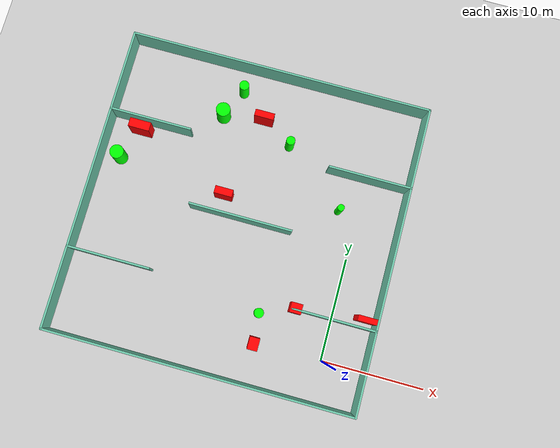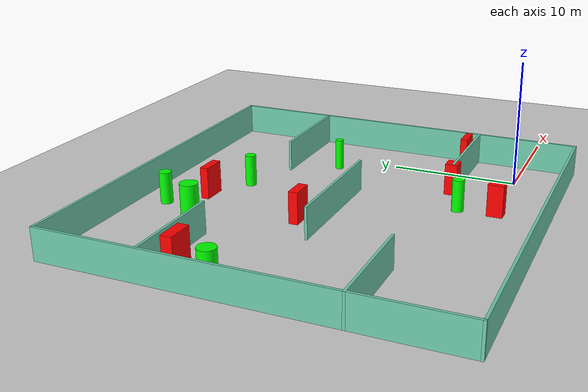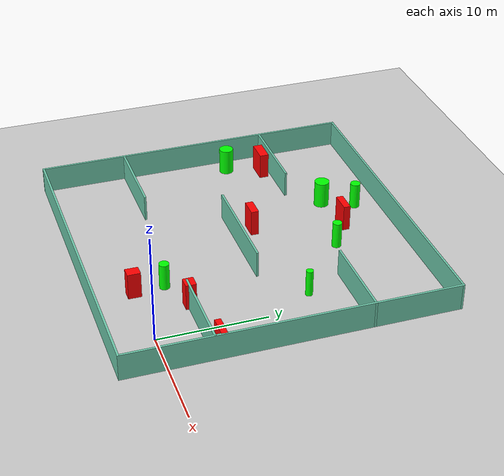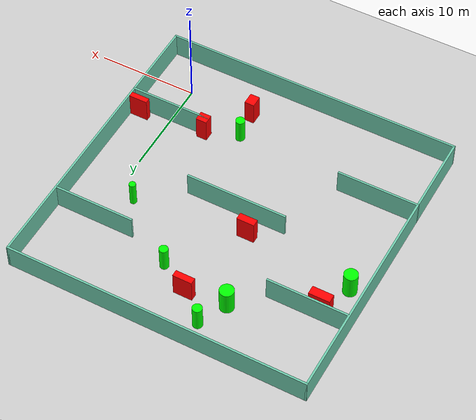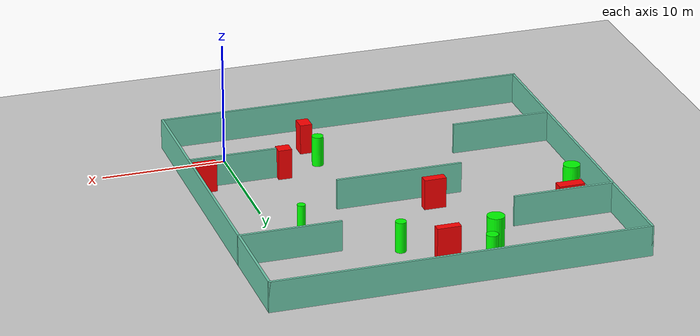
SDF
<sdf version="1.7">
 <world name="default">
  <light name="sun" type="directional">
   <pose>0 0 10 0 -0 0</pose>
   <diffuse>0.8 0.8 0.8 1</diffuse>
   <specular>0.2 0.2 0.2 1</specular>
   <attenuation>
    <range>1000</range>
    <constant>0.9</constant>
    <linear>0.01</linear>
    <quadratic>0.001</quadratic>
   </attenuation>
   <direction>-0.5 0.1 -0.9</direction>
   <spot><inner_angle>0</inner_angle><outer_angle>0</outer_angle><falloff>0</falloff></spot>
  </light>
  <model name="ground_plane">
   <static>1</static>
   <link name="link">
    <collision name="collision">
     <geometry><plane><normal>0 0 1</normal><size>100 100</size></plane></geometry>
     <surface>
      <contact><collide_bitmask>65535</collide_bitmask></contact>
      <friction><ode><mu>100</mu><mu2>50</mu2></ode></friction>
     </surface>
    </collision>
    <visual name="visual">
     <cast_shadows>0</cast_shadows>
     <geometry><plane><normal>0 0 1</normal><size>100 100</size></plane></geometry>
     <material>
      <script><uri>file://media/materials/scripts/gazebo.material</uri><name>Gazebo/Grey</name></script>
     </material>
    </visual>
   </link>
  </model>
  <gravity>0 0 -9.8</gravity>
  <magnetic_field>6e-06 2.3e-05 -4.2e-05</magnetic_field>
  <atmosphere type="adiabatic"/>
  <physics type="ode">
   <max_step_size>0.001</max_step_size>
   <real_time_factor>1</real_time_factor>
   <real_time_update_rate>1000</real_time_update_rate>
  </physics>
  <scene><ambient>0.4 0.4 0.4 1</ambient><background>0.7 0.7 0.7 1</background><shadows>1</shadows></scene>
  <spherical_coordinates>
   <surface_model>EARTH_WGS84</surface_model>
   <latitude_deg>0</latitude_deg>
   <longitude_deg>0</longitude_deg>
   <elevation>0</elevation>
   <heading_deg>0</heading_deg>
  </spherical_coordinates>
  <model name="my_base_walls">
   <link name="Wall_10">
    <collision name="Wall_10_Collision">
     <geometry><box><size>8.2 0.2 2.5</size></box></geometry>
     <pose>0 0 1.25 0 -0 0</pose>
    </collision>
    <visual name="Wall_10_Visual">
     <pose>0 0 1.25 0 -0 0</pose>
     <geometry><box><size>8.2 0.2 2.5</size></box></geometry>
     <material>
      <script><uri>file://media/materials/scripts/gazebo.material</uri><name>Gazebo/Grey</name></script>
      <ambient>0.435294 0.796078 0.67451 1</ambient>
     </material>
     <meta><layer>0</layer></meta>
    </visual>
    <pose>-11 -7 0 0 -0 0</pose>
   </link>
   <link name="Wall_12">
    <collision name="Wall_12_Collision">
     <geometry><box><size>8.2 0.2 2.5</size></box></geometry>
     <pose>0 0 1.25 0 -0 0</pose>
    </collision>
    <visual name="Wall_12_Visual">
     <pose>0 0 1.25 0 -0 0</pose>
     <geometry><box><size>8.2 0.2 2.5</size></box></geometry>
     <material>
      <script><uri>file://media/materials/scripts/gazebo.material</uri><name>Gazebo/Grey</name></script>
      <ambient>0.435294 0.796078 0.67451 1</ambient>
     </material>
     <meta><layer>0</layer></meta>
    </visual>
    <pose>-11 7 0 0 -0 0</pose>
   </link>
   <link name="Wall_14">
    <collision name="Wall_14_Collision">
     <geometry><box><size>8.2 0.2 2.5</size></box></geometry>
     <pose>0 0 1.25 0 -0 0</pose>
    </collision>
    <visual name="Wall_14_Visual">
     <pose>0 0 1.25 0 -0 0</pose>
     <geometry><box><size>8.2 0.2 2.5</size></box></geometry>
     <material>
      <script><uri>file://media/materials/scripts/gazebo.material</uri><name>Gazebo/Grey</name></script>
      <ambient>0.435294 0.796078 0.67451 1</ambient>
     </material>
     <meta><layer>0</layer></meta>
    </visual>
    <pose>11 7 0 0 -0 3.14159</pose>
   </link>
   <link name="Wall_16">
    <collision name="Wall_16_Collision">
     <geometry><box><size>10.2 0.2 2.5</size></box></geometry>
     <pose>0 0 1.25 0 -0 0</pose>
    </collision>
    <visual name="Wall_16_Visual">
     <pose>0 0 1.25 0 -0 0</pose>
     <geometry><box><size>10.2 0.2 2.5</size></box></geometry>
     <material>
      <script><uri>file://media/materials/scripts/gazebo.material</uri><name>Gazebo/Grey</name></script>
      <ambient>0.435294 0.796078 0.67451 1</ambient>
     </material>
     <meta><layer>0</layer></meta>
    </visual>
    <pose>0 0 0 0 -0 3.14159</pose>
   </link>
   <link name="Wall_2">
    <collision name="Wall_2_Collision">
     <geometry><box><size>30.2 0.2 2.5</size></box></geometry>
     <pose>0 0 1.25 0 -0 0</pose>
    </collision>
    <visual name="Wall_2_Visual">
     <pose>0 0 1.25 0 -0 0</pose>
     <geometry><box><size>30.2 0.2 2.5</size></box></geometry>
     <material>
      <script><uri>file://media/materials/scripts/gazebo.material</uri><name>Gazebo/Grey</name></script>
      <ambient>0.435294 0.796078 0.67451 1</ambient>
     </material>
     <meta><layer>0</layer></meta>
    </visual>
    <pose>0 -15 0 0 -0 3.14159</pose>
   </link>
   <link name="Wall_3">
    <collision name="Wall_3_Collision">
     <geometry><box><size>30.2 0.2 2.5</size></box></geometry>
     <pose>0 0 1.25 0 -0 0</pose>
    </collision>
    <visual name="Wall_3_Visual">
     <pose>0 0 1.25 0 -0 0</pose>
     <geometry><box><size>30.2 0.2 2.5</size></box></geometry>
     <material>
      <script><uri>file://media/materials/scripts/gazebo.material</uri><name>Gazebo/Grey</name></script>
      <ambient>0.435294 0.796078 0.67451 1</ambient>
     </material>
     <meta><layer>0</layer></meta>
    </visual>
    <pose>-15 0 0 0 -0 1.5708</pose>
   </link>
   <link name="Wall_4">
    <collision name="Wall_4_Collision">
     <geometry><box><size>30.2 0.2 2.5</size></box></geometry>
     <pose>0 0 1.25 0 -0 0</pose>
    </collision>
    <visual name="Wall_4_Visual">
     <pose>0 0 1.25 0 -0 0</pose>
     <geometry><box><size>30.2 0.2 2.5</size></box></geometry>
     <material>
      <script><uri>file://media/materials/scripts/gazebo.material</uri><name>Gazebo/Grey</name></script>
      <ambient>0.435294 0.796078 0.67451 1</ambient>
     </material>
     <meta><layer>0</layer></meta>
    </visual>
    <pose>0 15 0 0 -0 0</pose>
   </link>
   <link name="Wall_6">
    <collision name="Wall_6_Collision">
     <geometry><box><size>30.2 0.2 2.5</size></box></geometry>
     <pose>0 0 1.25 0 -0 0</pose>
    </collision>
    <visual name="Wall_6_Visual">
     <pose>0 0 1.25 0 -0 0</pose>
     <geometry><box><size>30.2 0.2 2.5</size></box></geometry>
     <material>
      <script><uri>file://media/materials/scripts/gazebo.material</uri><name>Gazebo/Grey</name></script>
      <ambient>0.435294 0.796078 0.67451 1</ambient>
     </material>
     <meta><layer>0</layer></meta>
    </visual>
    <pose>15 0 0 0 -0 1.5708</pose>
   </link>
   <link name="Wall_8">
    <collision name="Wall_8_Collision">
     <geometry><box><size>8.2 0.2 2.5</size></box></geometry>
     <pose>0 0 1.25 0 -0 0</pose>
    </collision>
    <visual name="Wall_8_Visual">
     <pose>0 0 1.25 0 -0 0</pose>
     <geometry><box><size>8.2 0.2 2.5</size></box></geometry>
     <material>
      <script><uri>file://media/materials/scripts/gazebo.material</uri><name>Gazebo/Grey</name></script>
      <ambient>0.435294 0.796078 0.67451 1</ambient>
     </material>
     <meta><layer>0</layer></meta>
    </visual>
    <pose>11 -7 0 0 -0 3.14159</pose>
   </link>
   <static>1</static>
   <pose>-11 11 0 0 -0 0</pose>
  </model>
  <model name="cylinder1">
   <static>1</static>
   <link name="link">
    <inertial>
     <mass>1</mass>
     <inertia><ixx>0.5</ixx><ixy>0</ixy><ixz>0</ixz><iyy>0.5</iyy><iyz>0</iyz><izz>1</izz></inertia>
    </inertial>
    <collision name="collision">
     <geometry><cylinder><radius>0.3292311505340181</radius><length>2.5</length></cylinder></geometry>
    </collision>
    <visual name="visual">
     <geometry><cylinder><radius>0.3292311505340181</radius><length>2.5</length></cylinder></geometry>
     <material>
      <ambient>0 1 0 1</ambient>
      <diffuse>0 1 0 1</diffuse>
      <specular>0.1 0.1 0.1 1</specular>
      <emissive>0 0 0 0</emissive>
     </material>
    </visual>
   </link>
   <pose>-1.993307569687559 14.392958351216983 1.25 0 0 0</pose>
  </model>
  <model name="cylinder2">
   <static>1</static>
   <link name="link">
    <inertial>
     <mass>1</mass>
     <inertia><ixx>0.5</ixx><ixy>0</ixy><ixz>0</ixz><iyy>0.5</iyy><iyz>0</iyz><izz>1</izz></inertia>
    </inertial>
    <collision name="collision">
     <geometry><cylinder><radius>0.46333164149371925</radius><length>2.5</length></cylinder></geometry>
    </collision>
    <visual name="visual">
     <geometry><cylinder><radius>0.46333164149371925</radius><length>2.5</length></cylinder></geometry>
     <material>
      <ambient>0 1 0 1</ambient>
      <diffuse>0 1 0 1</diffuse>
      <specular>0.1 0.1 0.1 1</specular>
      <emissive>0 0 0 0</emissive>
     </material>
    </visual>
   </link>
   <pose>-6.9243731614772805 2.7662763300560504 1.25 0 0 0</pose>
  </model>
  <model name="cylinder3">
   <static>1</static>
   <link name="link">
    <inertial>
     <mass>1</mass>
     <inertia><ixx>0.5</ixx><ixy>0</ixy><ixz>0</ixz><iyy>0.5</iyy><iyz>0</iyz><izz>1</izz></inertia>
    </inertial>
    <collision name="collision">
     <geometry><cylinder><radius>0.4770910491233276</radius><length>2.5</length></cylinder></geometry>
    </collision>
    <visual name="visual">
     <geometry><cylinder><radius>0.4770910491233276</radius><length>2.5</length></cylinder></geometry>
     <material>
      <ambient>0 1 0 1</ambient>
      <diffuse>0 1 0 1</diffuse>
      <specular>0.1 0.1 0.1 1</specular>
      <emissive>0 0 0 0</emissive>
     </material>
    </visual>
   </link>
   <pose>-14.09131542675709 23.64202797422084 1.25 0 0 0</pose>
  </model>
  <model name="cylinder4">
   <static>1</static>
   <link name="link">
    <inertial>
     <mass>1</mass>
     <inertia><ixx>0.5</ixx><ixy>0</ixy><ixz>0</ixz><iyy>0.5</iyy><iyz>0</iyz><izz>1</izz></inertia>
    </inertial>
    <collision name="collision">
     <geometry><cylinder><radius>0.6999582400360381</radius><length>2.5</length></cylinder></geometry>
    </collision>
    <visual name="visual">
     <geometry><cylinder><radius>0.6999582400360381</radius><length>2.5</length></cylinder></geometry>
     <material>
      <ambient>0 1 0 1</ambient>
      <diffuse>0 1 0 1</diffuse>
      <specular>0.1 0.1 0.1 1</specular>
      <emissive>0 0 0 0</emissive>
     </material>
    </visual>
   </link>
   <pose>-15.418695098991611 20.74840216281782 1.25 0 0 0</pose>
  </model>
  <model name="cylinder5">
   <static>1</static>
   <link name="link">
    <inertial>
     <mass>1</mass>
     <inertia><ixx>0.5</ixx><ixy>0</ixy><ixz>0</ixz><iyy>0.5</iyy><iyz>0</iyz><izz>1</izz></inertia>
    </inertial>
    <collision name="collision">
     <geometry><cylinder><radius>0.4351675181078787</radius><length>2.5</length></cylinder></geometry>
    </collision>
    <visual name="visual">
     <geometry><cylinder><radius>0.4351675181078787</radius><length>2.5</length></cylinder></geometry>
     <material>
      <ambient>0 1 0 1</ambient>
      <diffuse>0 1 0 1</diffuse>
      <specular>0.1 0.1 0.1 1</specular>
      <emissive>0 0 0 0</emissive>
     </material>
    </visual>
   </link>
   <pose>-8.278060793113386 19.469511188677725 1.25 0 0 0</pose>
  </model>
  <model name="cylinder6">
   <static>1</static>
   <link name="link">
    <inertial>
     <mass>1</mass>
     <inertia><ixx>0.5</ixx><ixy>0</ixy><ixz>0</ixz><iyy>0.5</iyy><iyz>0</iyz><izz>1</izz></inertia>
    </inertial>
    <collision name="collision">
     <geometry><cylinder><radius>0.6776499467640931</radius><length>2.5</length></cylinder></geometry>
    </collision>
    <visual name="visual">
     <geometry><cylinder><radius>0.6776499467640931</radius><length>2.5</length></cylinder></geometry>
     <material>
      <ambient>0 1 0 1</ambient>
      <diffuse>0 1 0 1</diffuse>
      <specular>0.1 0.1 0.1 1</specular>
      <emissive>0 0 0 0</emissive>
     </material>
    </visual>
   </link>
   <pose>-24.181551943946822 13.966508656723171 1.25 0 0 0</pose>
  </model>
  <model name="box1">
   <static>1</static>
   <link name="link">
    <inertial>
     <mass>1</mass>
     <inertia><ixx>0.083</ixx><ixy>0</ixy><ixz>0</ixz><iyy>0.083</iyy><iyz>0</iyz><izz>0.083</izz></inertia>
    </inertial>
    <collision name="collision">
     <geometry><box><size>2.091937823283356 0.8658308874327988 2.5</size></box></geometry>
    </collision>
    <visual name="visual">
     <geometry><box><size>2.091937823283356 0.8658308874327988 2.5</size></box></geometry>
     <material>
      <ambient>1 0 0 1</ambient>
      <diffuse>1 0 0 1</diffuse>
      <specular>0.1 0.1 0.1 1</specular>
      <emissive>0 0 0 0</emissive>
     </material>
    </visual>
    <sensor name="my_contact" type="contact">
     <contact><collision>box_collision</collision><topic>__default_topic__</topic></contact>
    </sensor>
   </link>
   <pose>-22.84117354781321 17.149623901682467 1.25 0 0 0</pose>
  </model>
  <model name="box2">
   <static>1</static>
   <link name="link">
    <inertial>
     <mass>1</mass>
     <inertia><ixx>0.083</ixx><ixy>0</ixy><ixz>0</ixz><iyy>0.083</iyy><iyz>0</iyz><izz>0.083</izz></inertia>
    </inertial>
    <collision name="collision">
     <geometry><box><size>0.9786507833548659 1.208235795933131 2.5</size></box></geometry>
    </collision>
    <visual name="visual">
     <geometry><box><size>0.9786507833548659 1.208235795933131 2.5</size></box></geometry>
     <material>
      <ambient>1 0 0 1</ambient>
      <diffuse>1 0 0 1</diffuse>
      <specular>0.1 0.1 0.1 1</specular>
      <emissive>0 0 0 0</emissive>
     </material>
    </visual>
    <sensor name="my_contact" type="contact">
     <contact><collision>box_collision</collision><topic>__default_topic__</topic></contact>
    </sensor>
   </link>
   <pose>-6.6651841125246865 -0.0817839250433754 1.25 0 0 0</pose>
  </model>
  <model name="box3">
   <static>1</static>
   <link name="link">
    <inertial>
     <mass>1</mass>
     <inertia><ixx>0.083</ixx><ixy>0</ixy><ixz>0</ixz><iyy>0.083</iyy><iyz>0</iyz><izz>0.083</izz></inertia>
    </inertial>
    <collision name="collision">
     <geometry><box><size>1.7709079426621805 0.7231044174345171 2.5</size></box></geometry>
    </collision>
    <visual name="visual">
     <geometry><box><size>1.7709079426621805 0.7231044174345171 2.5</size></box></geometry>
     <material>
      <ambient>1 0 0 1</ambient>
      <diffuse>1 0 0 1</diffuse>
      <specular>0.1 0.1 0.1 1</specular>
      <emissive>0 0 0 0</emissive>
     </material>
    </visual>
    <sensor name="my_contact" type="contact">
     <contact><collision>box_collision</collision><topic>__default_topic__</topic></contact>
    </sensor>
   </link>
   <pose>-13.191828127167621 12.948223530445564 1.25 0 0 0</pose>
  </model>
  <model name="box4">
   <static>1</static>
   <link name="link">
    <inertial>
     <mass>1</mass>
     <inertia><ixx>0.083</ixx><ixy>0</ixy><ixz>0</ixz><iyy>0.083</iyy><iyz>0</iyz><izz>0.083</izz></inertia>
    </inertial>
    <collision name="collision">
     <geometry><box><size>1.9186549832147852 0.646475573354757 2.5</size></box></geometry>
    </collision>
    <visual name="visual">
     <geometry><box><size>1.9186549832147852 0.646475573354757 2.5</size></box></geometry>
     <material>
      <ambient>1 0 0 1</ambient>
      <diffuse>1 0 0 1</diffuse>
      <specular>0.1 0.1 0.1 1</specular>
      <emissive>0 0 0 0</emissive>
     </material>
    </visual>
    <sensor name="my_contact" type="contact">
     <contact><collision>box_collision</collision><topic>__default_topic__</topic></contact>
    </sensor>
   </link>
   <pose>-11.403361878402752 21.315871447730796 1.25 0 0 0</pose>
  </model>
  <model name="box5">
   <static>1</static>
   <link name="link">
    <inertial>
     <mass>1</mass>
     <inertia><ixx>0.083</ixx><ixy>0</ixy><ixz>0</ixz><iyy>0.083</iyy><iyz>0</iyz><izz>0.083</izz></inertia>
    </inertial>
    <collision name="collision">
     <geometry><box><size>1.099055687000205 0.9731442232054739 2.5</size></box></geometry>
    </collision>
    <visual name="visual">
     <geometry><box><size>1.099055687000205 0.9731442232054739 2.5</size></box></geometry>
     <material>
      <ambient>1 0 0 1</ambient>
      <diffuse>1 0 0 1</diffuse>
      <specular>0.1 0.1 0.1 1</specular>
      <emissive>0 0 0 0</emissive>
     </material>
    </visual>
    <sensor name="my_contact" type="contact">
     <contact><collision>box_collision</collision><topic>__default_topic__</topic></contact>
    </sensor>
   </link>
   <pose>-3.690404019867003 4.112714524673921 1.25 0 0 0</pose>
  </model>
  <model name="box6">
   <static>1</static>
   <link name="link">
    <inertial>
     <mass>1</mass>
     <inertia><ixx>0.083</ixx><ixy>0</ixy><ixz>0</ixz><iyy>0.083</iyy><iyz>0</iyz><izz>0.083</izz></inertia>
    </inertial>
    <collision name="collision">
     <geometry><box><size>1.9540548128186694 0.5574121492462734 2.5</size></box></geometry>
    </collision>
    <visual name="visual">
     <geometry><box><size>1.9540548128186694 0.5574121492462734 2.5</size></box></geometry>
     <material>
      <ambient>1 0 0 1</ambient>
      <diffuse>1 0 0 1</diffuse>
      <specular>0.1 0.1 0.1 1</specular>
      <emissive>0 0 0 0</emissive>
     </material>
    </visual>
    <sensor name="my_contact" type="contact">
     <contact><collision>box_collision</collision><topic>__default_topic__</topic></contact>
    </sensor>
   </link>
   <pose>3.0088447515413215 4.820656444301438 1.25 0 0 0</pose>
  </model>
 </world>
</sdf>
